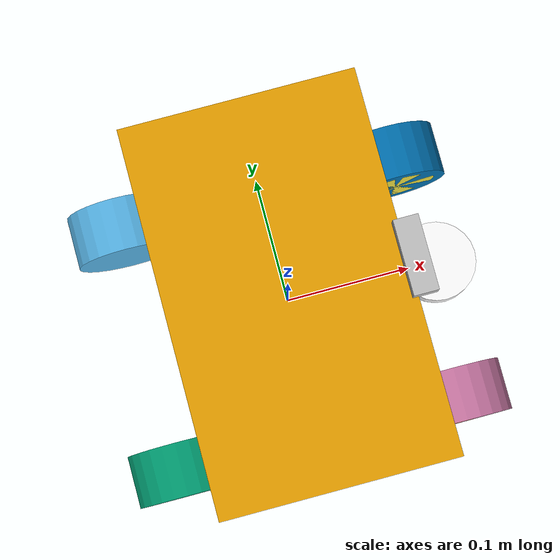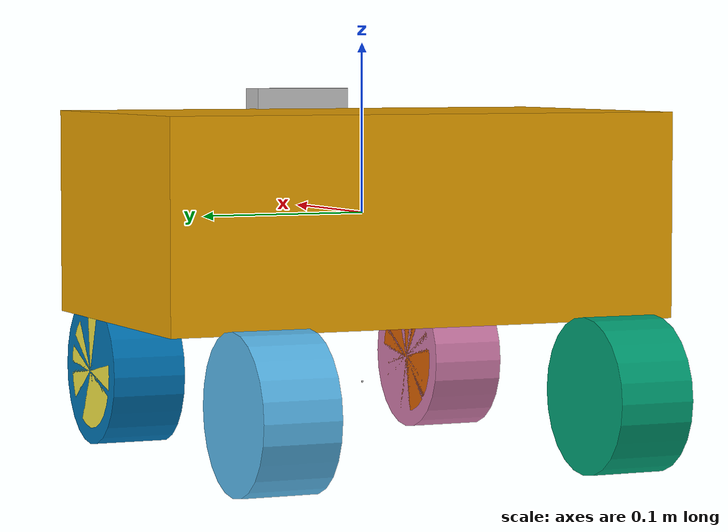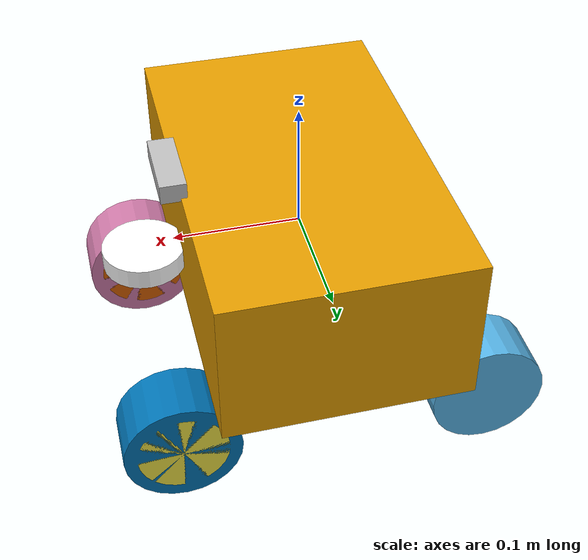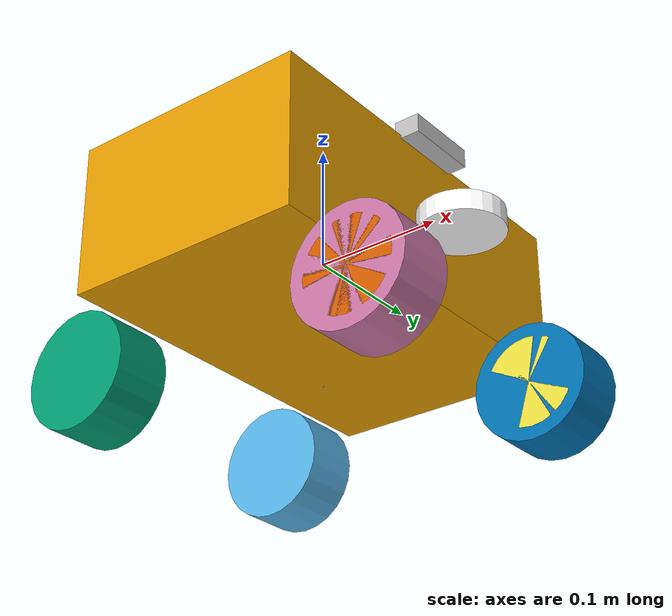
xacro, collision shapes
<?xml version="1.0"?>
<!--Auto: Zhui Li-->
<!--E-Mail: lz554113510@gmail.com -->
<!--Company: Institut für Intermodale Transport- und Logistiksysteme in Technische Universität Braunschweig -->

<robot name="limo_ackermann" xmlns:xacro="http://www.ros.org/wiki/xacro">

    <xacro:include filename="$(find limo_car)/gazebo/ackermann.xacro" />
    <xacro:limo_ackermann />
    <xacro:include filename="$(find limo_car)/gazebo/sensor.xacro" />

    <!-- ************************* Laser ****************************** -->
    <xacro:gazebo_laser frame_prefix="laser" />

    <joint name="laser_joint" type="fixed">
        <origin xyz="0.1236 0 -0.01" rpy="0 0 0"/>
        <parent link="base_link"/>
        <child link="laser_link"/>
    </joint>
    <!-- ************************* Depth-camera *********************** -->
    <xacro:gazebo_depth_camera frame_prefix="depth_camera" />

    <joint name="depth_camera_joint" type="fixed">
        <origin xyz="0.1 0 0.065" rpy="0 0 0"/>
        <parent link="base_link"/>
        <child link="depth_camera_link"/>
    </joint>
    <!-- ************************* IMU ******************************** -->
    <xacro:gazebo_imu frame_prefix="imu" />

    <joint name="imu_joint" type="fixed">
        <origin xyz="0.0 0 -0.1" rpy="0 0 0"/>
        <parent link="base_link"/>
        <child link="imu_link"/>
    </joint>
</robot>

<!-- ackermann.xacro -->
<!--Auto: Zhui Li-->
<!--E-Mail: lz554113510@gmail.com -->
<!--Company: Institut für Intermodale Transport- und Logistiksysteme in Technische Universität Braunschweig -->

<robot name="limo_ackermann" xmlns:xacro="http://www.ros.org/wiki/xacro">

    <!-- ******************************** Paramenten zu definieren ************************************* -->
    <!-- definiert Value -->
    <xacro:property name="M_PI" value="${pi}"/>

    <!-- das Value sind all gemessen -->
    <xacro:property name="base_mass" value="4.34"/>
    <xacro:property name="base_x_size" value="0.19" />
    <xacro:property name="base_y_size" value="0.31" />
    <xacro:property name="base_z_size" value="0.12" />

    <xacro:property name="wheelbase" value="0.24"/>
    <xacro:property name="track" value="0.168"/>
    <xacro:property name="wheel_vertical_offset" value="-0.10" />

    <xacro:property name="wheel_mass" value="0.5" />
    <xacro:property name="wheel_length" value="0.045" />
    <xacro:property name="wheel_radius" value="0.045" />

    <!-- Finite contact stiffness avoids hard-contact chatter at the world's 4 ms step. -->
    <xacro:macro name="wheel_contact" params="link">
        <gazebo reference="${link}">
            <mu1>0.8</mu1>
            <mu2>0.8</mu2>
            <kp>100000</kp>
            <kd>100</kd>
            <minDepth>0.001</minDepth>
            <maxVel>0.1</maxVel>
        </gazebo>
    </xacro:macro>

    <!-- definieren die Macro-Function für die Rechnungen der Matrizen für Trägheitsmoment-->
    <!-- Zylinder -->
    <xacro:macro name="cylinder_inertial_matrix" params="m r h">
        <inertial>
            <!-- Same center and cylinder axis as the wheel collision. -->
            <origin xyz="0 ${wheel_length/2} 0" rpy="${M_PI/2} 0 0" />
            <mass value="${m}" />
            <inertia ixx="${m*(3*r*r+h*h)/12}" ixy = "0" ixz = "0"
                     iyy="${m*(3*r*r+h*h)/12}" iyz = "0"
                     izz="${m*r*r/2}" />
        </inertial>
    </xacro:macro>
    <!-- Quader -->
    <xacro:macro name="box_inertial_matrix" params="m w l h">
        <inertial>
            <origin xyz="0.0 0.0 0.0" />
            <mass value="${m}" />
            <inertia ixx="${m*(l*l+h*h)/12}" ixy = "0" ixz = "0"
                     iyy="${m*(h*h+w*w)/12}" iyz = "0"
                     izz="${m*(w*w+l*l)/12}" />
        </inertial>
    </xacro:macro>

    <!-- **************************** Makrofunktion zu definieren ************************************** -->
    <!-- Makrofunktion für vorderen Räder mit Steuerscharnier-->
    <!-- front left -->
    <xacro:macro name="limo_left_steering_hinge" params="parent_prefix wheel_prefix *joint_pose">
        <link name="${wheel_prefix}_steer_link">
            <inertial>
                <!-- diese Daten kommen aus den Herstellern -->
                <mass value="0.25" />
                <inertia ixx="0.00525" ixy="0" ixz="0" iyy="0.00035" iyz="0" izz="0.00525" />
                <origin xyz="0 0 0" />
            </inertial>
            <visual>
                <origin xyz="0 0 0" rpy="0 0 0" />
                <geometry>
                    <!-- es ist sehr klein, einfach als Klein definiert wird -->
                    <cylinder length="0.0001" radius="0.0001" />
                </geometry>
            </visual>
            <collision>
                <origin xyz="0 ${wheel_length/2} 0" rpy="${M_PI/2} 0 0" />
                <geometry>
                    <cylinder length="${wheel_length}" radius="${wheel_radius-0.01}" />
                </geometry>
            </collision>
        </link>

        <joint name="${wheel_prefix}_steer_joint" type="revolute">
            <parent link="${parent_prefix}"/>
            <child link="${wheel_prefix}_steer_link"/>
            <xacro:insert_block name="joint_pose"/>
            <axis xyz="0 0 1" />
            <!-- Paramenten von Herstellern -->
            <limit lower="-0.523598767" upper="0.523598767" effort="5" velocity="2.0" />
            <dynamics damping="0.1" friction="0.0"/>
        </joint>

        <transmission name="${wheel_prefix}_hinge_trans" type="SimpleTransmission">
            <type>transmission_interface/SimpleTransmission</type>
            <actuator name="${wheel_prefix}_hinge_motor">
                <hardwareInterface>hardware_interface/EffortJointInterface</hardwareInterface>
                <mechanicalReduction>1</mechanicalReduction>
            </actuator>
            <joint name="${wheel_prefix}_steer_joint">
                <hardwareInterface>hardware_interface/EffortJointInterface</hardwareInterface>
            </joint>
        </transmission>

        <link name="${wheel_prefix}_wheel_link">
            <visual>
                <origin xyz="0 0 0" rpy="0 0 0" />
                <geometry>
                    <mesh filename="$(find limo_car)/meshes/limo_wheel.dae" scale="1.2 1.2 1.2"/>
                </geometry>
            </visual>
            <collision>
                <origin xyz="0 ${wheel_length/2} 0" rpy="${M_PI/2} 0 0" />
                <geometry>
                    <cylinder length="${wheel_length}" radius="${wheel_radius}" />
                </geometry>
            </collision>
            <xacro:cylinder_inertial_matrix  m="${wheel_mass}" r="${wheel_radius}"  h="${wheel_length}" />
        </link>

        <joint name="${wheel_prefix}_wheel_joint" type="continuous">
            <parent link="${wheel_prefix}_steer_link"/>
            <child link="${wheel_prefix}_wheel_link"/>
            <origin xyz="0 0 0" rpy="0 0 0" />
            <axis xyz="0 1 0"/>
        </joint>

        <transmission name="${wheel_prefix}_wheel_trans" type="SimpleTransmission">
            <type>transmission_interface/SimpleTransmission</type>
            <actuator name="${wheel_prefix}_wheel_motor">
                <!-- Type für den Topic(Paramenten) -->
                <hardwareInterface>hardware_interface/VelocityJointInterface</hardwareInterface>
                <mechanicalReduction>1</mechanicalReduction>
            </actuator>
            <joint name="${wheel_prefix}_wheel_joint">
                <hardwareInterface>hardware_interface/VelocityJointInterface</hardwareInterface>
            </joint>
        </transmission>
    </xacro:macro>

    <!-- front right -->
    <xacro:macro name="limo_right_steering_hinge" params="parent_prefix wheel_prefix *joint_pose">
        <link name="${wheel_prefix}_steer_link">
            <inertial>
                <mass value="0.25" />
                <inertia ixx="0.00525" ixy="0" ixz="0" iyy="0.00035" iyz="0" izz="0.00525" />
                <origin xyz="0 0 0" />
            </inertial>
            <visual>
                <origin xyz="0 0 0" rpy="0 0 0" />
                <geometry>
                    <cylinder length="0.0001" radius="0.0001" />
                </geometry>
            </visual>
            <collision>
                <origin xyz="0 ${wheel_length/2} 0" rpy="${M_PI/2} 0 0" />
                <geometry>
                    <cylinder length="${wheel_length}" radius="${wheel_radius-0.01}" />
                </geometry>
            </collision>
        </link>

        <joint name="${wheel_prefix}_steer_joint" type="revolute">
            <parent link="${parent_prefix}"/>
            <child link="${wheel_prefix}_steer_link"/>
            <xacro:insert_block name="joint_pose"/>
            <axis xyz="0 0 -1"/>
            <limit lower="-0.523598767" upper="0.523598767" effort="5" velocity="2.0" />
            <dynamics damping="0.1" friction="0.0"/>
        </joint>

        <transmission name="${wheel_prefix}_hinge_trans" type="SimpleTransmission">
            <type>transmission_interface/SimpleTransmission</type>
            <actuator name="${wheel_prefix}_hinge_motor">
                <hardwareInterface>hardware_interface/EffortJointInterface</hardwareInterface>
                <mechanicalReduction>1</mechanicalReduction>
            </actuator>
            <joint name="${wheel_prefix}_steer_joint">
                <hardwareInterface>hardware_interface/EffortJointInterface</hardwareInterface>
            </joint>
        </transmission>

        <link name="${wheel_prefix}_wheel_link">
            <visual>
                <origin xyz="0 0 0" rpy="0 0 0" />
                <geometry>
                    <mesh filename="$(find limo_car)/meshes/limo_wheel.dae" scale="1.2 1.2 1.2" />
                </geometry>
            </visual>
            <collision>
                <origin xyz="0 ${wheel_length/2} 0" rpy="${M_PI/2} 0 0" />
                <geometry>
                    <cylinder length="${wheel_length}" radius="${wheel_radius}" />
                </geometry>
            </collision>
            <xacro:cylinder_inertial_matrix  m="${wheel_mass}" r="${wheel_radius}"  h="${wheel_length}" />
        </link>

        <joint name="${wheel_prefix}_wheel_joint" type="continuous">
            <parent link="${wheel_prefix}_steer_link"/>
            <child link="${wheel_prefix}_wheel_link"/>
            <origin xyz="0 0 0" rpy="0 0  0" />
            <axis xyz="0 -1 0"/>
        </joint>

        <transmission name="${wheel_prefix}_wheel_trans" type="SimpleTransmission">
            <type>transmission_interface/SimpleTransmission</type>
            <actuator name="${wheel_prefix}_wheel_motor">
                <!-- Type für den Topic(Paramenten) -->
                <hardwareInterface>hardware_interface/VelocityJointInterface</hardwareInterface>
                <mechanicalReduction>1</mechanicalReduction>
            </actuator>
            <joint name="${wheel_prefix}_wheel_joint">
                <hardwareInterface>hardware_interface/VelocityJointInterface</hardwareInterface>
            </joint>
        </transmission>
    </xacro:macro>

    <!-- ***************************************** Base zu bauen *************************************** -->
    <!-- erstellt Hauptanteil des Modells, definiert ein Nullpunkt, um Modell aufzubauen. Es ist einfach für weitere
    Darstellungspostion in Simulation-Umgebung -->
    <xacro:macro name="limo_ackermann">

        <!-- herstellt base_link -->
        <link name="base_link">
            <visual>
                <origin xyz="0 0 -0.15" rpy="0 0 ${M_PI/2}" />
                <geometry>
                    <!-- Modell von Hersteller, aber es ist kleiner als realen Produkt, da die Skale vergrößert wird -->
                    <mesh filename="$(find limo_car)/meshes/limo_base.dae" scale="1.2 1.2 1.2" />
                </geometry>
            </visual>
            <!-- Modell für physikalische Kollision zu modellieren. -->
            <collision>
                <origin xyz="0 0 0" rpy="0 0 0" />
                <geometry>
                    <box size="${base_x_size} ${base_y_size} ${base_z_size}"/>
                </geometry>
            </collision>
            <xacro:box_inertial_matrix  m="${base_mass}" w="${base_x_size}" l="${base_y_size}" h="${base_z_size}" />
        </link>

        <gazebo reference="base_link">
            <material>
                <color rgba="0 0 0 0.5"/>
            </material>
        </gazebo>

        <!-- hinten Räder -->
        <link name="rear_left_wheel_link">
            <visual>
                <origin xyz="0 0 0" rpy="0 0 0" />
                <geometry>
                    <mesh filename="$(find limo_car)/meshes/limo_wheel.dae" scale="1.2 1.2 1.2"/>
                </geometry>
            </visual>
            <collision>
                <origin xyz="0 ${wheel_length/2} 0" rpy="${M_PI/2} 0 0" />
                <geometry>
                    <cylinder length="${wheel_length}" radius="${wheel_radius}" />
                </geometry>
            </collision>
            <xacro:cylinder_inertial_matrix  m="${wheel_mass}" r="${wheel_radius}" h="${wheel_length}"/>
        </link>

        <joint name="rear_left_wheel_joint" type="continuous">
            <parent link="base_link"/>
            <child link="rear_left_wheel_link"/>
            <origin xyz="${-wheelbase/2} ${track/2} ${wheel_vertical_offset}" rpy="0 0 0" />
            <axis xyz="0 1 0"/>
        </joint>

        <transmission name="rear_left_wheel_trans" type="SimpleTransmission">
            <type>transmission_interface/SimpleTransmission</type>
            <actuator name="rear_left_wheel_motor">
                <hardwareInterface>hardware_interface/VelocityJointInterface</hardwareInterface>
                <mechanicalReduction>1</mechanicalReduction>
            </actuator>
            <joint name="rear_left_wheel_joint">
                <hardwareInterface>hardware_interface/VelocityJointInterface</hardwareInterface>
            </joint>
        </transmission>

        <link name="rear_right_wheel_link">
            <visual>
                <origin xyz="0 0 0" rpy="0 0 0" />
                <geometry>
                    <mesh filename="$(find limo_car)/meshes/limo_wheel.dae" scale="1.2 1.2 1.2"/>
                </geometry>
            </visual>
            <collision>
                <origin xyz="0 ${wheel_length/2} 0" rpy="${M_PI/2} 0 0" />
                <geometry>
                    <cylinder length="${wheel_length}" radius="${wheel_radius}" />
                </geometry>
            </collision>
            <xacro:cylinder_inertial_matrix  m="${wheel_mass}" r="${wheel_radius}" h="${wheel_length}"/>
        </link>

        <joint name="rear_right_wheel_joint" type="continuous">
            <parent link="base_link"/>
            <child link="rear_right_wheel_link"/>
            <origin xyz="${-wheelbase/2} ${-track/2} ${wheel_vertical_offset}" rpy="${M_PI} 0 0" />
            <axis xyz="0 -1 0"/>
        </joint>

        <transmission name="rear_right_wheel_trans" type="SimpleTransmission">
            <type>transmission_interface/SimpleTransmission</type>
            <actuator name="rear_right_wheel_motor">
                <hardwareInterface>hardware_interface/VelocityJointInterface</hardwareInterface>
                <mechanicalReduction>1</mechanicalReduction>
            </actuator>
            <joint name="rear_right_wheel_joint">
                <hardwareInterface>hardware_interface/VelocityJointInterface</hardwareInterface>
            </joint>
        </transmission>

        <!-- ruft Steuerscharnier mit vorderem Räder auf -->
        <xacro:limo_left_steering_hinge parent_prefix="base_link" wheel_prefix="front_left">
            <origin xyz="${wheelbase/2} ${track/2} ${wheel_vertical_offset}" rpy="0 0 0" />
        </xacro:limo_left_steering_hinge>

        <xacro:limo_right_steering_hinge parent_prefix="base_link" wheel_prefix="front_right">
            <origin xyz="${wheelbase/2} ${-track/2} ${wheel_vertical_offset}" rpy="${M_PI} 0 0" />
        </xacro:limo_right_steering_hinge>

        <!-- ********************************** Kontrolle zu erstellen ************************************* -->
        <xacro:wheel_contact link="front_left_wheel_link"/>
        <xacro:wheel_contact link="front_right_wheel_link"/>
        <xacro:wheel_contact link="rear_left_wheel_link"/>
        <xacro:wheel_contact link="rear_right_wheel_link"/>
        <gazebo>
            <!-- Rear wheel torque and front steering control; never overwrite body velocity. -->
            <plugin name="limo_ackermann_controller" filename="libgazebo_ros_ackermann_drive.so">
                <ros>
                    <remapping>cmd_vel:=/ackermann_controller/cmd_vel</remapping>
                    <remapping>odom:=/odom</remapping>
                </ros>
                <update_rate>250.0</update_rate>
                <front_left_joint>front_left_wheel_joint</front_left_joint>
                <front_right_joint>front_right_wheel_joint</front_right_joint>
                <rear_left_joint>rear_left_wheel_joint</rear_left_joint>
                <rear_right_joint>rear_right_wheel_joint</rear_right_joint>
                <left_steering_joint>front_left_steer_joint</left_steering_joint>
                <right_steering_joint>front_right_steer_joint</right_steering_joint>
                <left_steering_pid_gain>20 0 0.5</left_steering_pid_gain>
                <right_steering_pid_gain>20 0 0.5</right_steering_pid_gain>
                <left_steering_i_range>0 0</left_steering_i_range>
                <right_steering_i_range>0 0</right_steering_i_range>
                <linear_velocity_pid_gain>0.1 0.5 0</linear_velocity_pid_gain>
                <linear_velocity_i_range>-1 1</linear_velocity_i_range>
                <!-- Center angle leaves room for the inner wheel's 30 degree limit. -->
                <max_steer>0.42</max_steer>
                <max_speed>1.0</max_speed>
                <publish_odom>true</publish_odom>
                <publish_odom_tf>true</publish_odom_tf>
                <publish_wheel_tf>false</publish_wheel_tf>
                <odometry_frame>odom</odometry_frame>
                <robot_base_frame>base_link</robot_base_frame>
            </plugin>
            <plugin name="limo_ackermann_joint_states" filename="libgazebo_ros_joint_state_publisher.so">
                <ros><remapping>joint_states:=/joint_states</remapping></ros>
                <update_rate>100</update_rate>
                <joint_name>front_left_steer_joint</joint_name>
                <joint_name>front_right_steer_joint</joint_name>
                <joint_name>front_left_wheel_joint</joint_name>
                <joint_name>front_right_wheel_joint</joint_name>
                <joint_name>rear_left_wheel_joint</joint_name>
                <joint_name>rear_right_wheel_joint</joint_name>
            </plugin>
        </gazebo>
    </xacro:macro>
</robot>

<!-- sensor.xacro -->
<!-- Autor: Zhui Li -->
<!--E-Mail: lz554113510@gmail.com -->
<!--Company: Institut für Intermodale Transport- und Logistiksysteme in Technische Universität Braunschweig -->

<robot name="limo_sensor" xmlns:xacro="http://www.ros.org/wiki/xacro">

    <!-- ******************************* Makrofunktion für Laser-Sensor ***************************** -->
    <xacro:macro name="gazebo_laser" params="frame_prefix">
        <link name='${frame_prefix}_link'>
            <inertial>
                <mass value="0.1"/>
                <origin xyz="0.0 0 0" rpy="0 0 0"/>
                <inertia
                        ixx="1e-6" ixy="0" ixz="0"
                        iyy="1e-6" iyz="0"
                        izz="1e-6"
                />
            </inertial>
            <visual name='laser_visual'>
                <origin xyz="0 0 0" rpy="0 0 0"/>
                <geometry>
                    <cylinder radius="0.02" length="0.01"/>
                </geometry>
                <material name='laser_material'>
                    <color rgba="1 1 1 1" />
                    <ambient>0.1 0.1 0.1 1</ambient>
                    <diffuse>0.1 0.1 0.2 1</diffuse>
                    <specular>0 0 0 0</specular>
                    <emissive>0 0 0 1</emissive>
                </material>
            </visual>
            <collision name='laser_collision'>
                <origin xyz="0 0 0" rpy="0 0 0"/>
                <geometry>
                    <cylinder radius="0.032" length="0.016"/>
                </geometry>
            </collision>
        </link>

        <gazebo reference="${frame_prefix}_link">
            <sensor type="ray" name="laser_sensor">
                <visualize>false</visualize>
                <update_rate>8</update_rate>
                <ray>
                    <scan>
                        <horizontal>
                            <samples>720</samples>
                            <resolution>1</resolution>
                            <min_angle>-2.09439504</min_angle> <!-- Einheit in "rad", von Hersteller -->
                            <max_angle>2.09439504</max_angle>
                        </horizontal>
                    </scan>
                    <range>
                        <min>0.2</min>
                        <max>8.0</max>
                        <resolution>0.01</resolution>
                    </range>
                    <!-- um bessere Realität zu simulieren, wird Rauschen auch addiert -->
                    <noise>
                        <type>gaussian</type>
                        <mean>0.0</mean>
                        <stddev>0.01</stddev>
                    </noise>
                </ray>
                <plugin name="gazebo_ros_laser_sensor" filename="libgazebo_ros_ray_sensor.so">
                    <ros>
                        <namespace>/</namespace>
                        <remapping>~/out:=scan</remapping>
                    </ros>
                    <!-- Fixed-joint reduction otherwise labels scans as base_link. -->
                    <frame_name>${frame_prefix}_link</frame_name>
                    <output_type>sensor_msgs/LaserScan</output_type>
                    <min_intensity>150.0</min_intensity>
                </plugin>
            </sensor>
        </gazebo>
    </xacro:macro>

    <!-- ******************************* Makrofunktion für Depth-Camera ***************************** -->
    <xacro:macro name="gazebo_depth_camera" params="frame_prefix">
        <link name='${frame_prefix}_link'>
            <origin xyz="0 0 0" rpy="0 0 0"/>
            <inertial>
                <mass value="0.1"/>
                <origin xyz="0.0 0 0" rpy="0 0 0"/>
                <inertia
                        ixx="1e-6" ixy="0" ixz="0"
                        iyy="1e-6" iyz="0"
                        izz="1e-6"
                />
            </inertial>
            <visual name='depth_camera_visual'>
                <origin xyz="0 0 0" rpy="0 0 0"/>
                <geometry>
                    <box size="0.02 0.06 0.015"/>
                </geometry>
                <material name='depth_camera_material'>
                    <color rgba="0.75 0.75 0.75 1" />
                    <ambient>0.1 0.1 0.1 1</ambient>
                    <diffuse>0.1 0.1 0.2 1</diffuse>
                    <specular>0 0 0 0</specular>
                    <emissive>0 0 0 1</emissive>
                </material>
            </visual>
            <collision name='depth_camera_collision'>
                <origin xyz="0 0 0" rpy="0 0 0"/>
                <geometry>
                    <box size="0.02 0.06 0.015"/>
                </geometry>
            </collision>
        </link>

        <link name="depth_link" />

        <joint name="${frame_prefix}_to_camera_joint" type="fixed">
            <origin xyz="0 0 0" rpy="-1.570796 0 -1.570796 "/>
            <parent link="${frame_prefix}_link"/>
            <child link="depth_link"/>
        </joint>

        <gazebo reference="${frame_prefix}_link">
            <sensor name="sensor_camera" type="depth">
                <pose>0.0 0.0 0.0 0.0 0.0 0.0</pose>
                <always_on>true</always_on>
                <visualize>true</visualize>
                <update_rate>10.0</update_rate>
                <camera name="head">
                    <horizontal_fov>1.3962634</horizontal_fov> <!-- 60*pi/180 -->
                    <!-- normalisieren die Form für Fotos -->
                    <image>
                        <width>640</width>
                        <height>480</height>
                        <format>R8G8B8</format>
                    </image>
                    <clip>
                        <near>0.15</near>
                        <far>8.0</far>
                    </clip>
                </camera>
                <plugin name="gazebo_ros_depth_camera_sensor" filename="libgazebo_ros_camera.so">
                    <ros>
                        <remapping>${frame_prefix}/image_raw:=rgb/image_raw</remapping>
                        <remapping>${frame_prefix}/image_depth:=depth/image_raw</remapping>
                        <remapping>${frame_prefix}/camera_info:=rgb/camera_info</remapping>
                        <remapping>${frame_prefix}/camera_info_depth:=depth/camera_info</remapping>
                        <remapping>${frame_prefix}/points:=depth/points</remapping>
                    </ros>
                    <camera_name>${frame_prefix}</camera_name>
                    <frame_name>depth_link</frame_name>
                    <hack_baseline>0.07</hack_baseline>
                    <min_depth>0.001</min_depth>
                    <max_depth>300.0</max_depth>
                </plugin>
            </sensor>
        </gazebo>
    </xacro:macro>

    <!-- ******************************* Makrofunktion für IMU ***************************** -->
    <xacro:macro name="gazebo_imu" params="frame_prefix">
        <link name='${frame_prefix}_link'>
            <pose>0 0 0 0 0 0</pose>
            <inertial>
                <mass value="0.01"/>
                <origin xyz="0.0 0 0" rpy="0 0 0"/>
                <inertia
                        ixx="1e-7" ixy="0" ixz="0"
                        iyy="1e-7" iyz="0"
                        izz="1e-7"
                />
            </inertial>
            <visual name='imu_visual'>
                <origin xyz="0 0 0" rpy="0 0 0"/>
                <geometry>
                    <box size="0.001 0.001 0.001"/>
                </geometry>
                <material name='imu_material'>
                    <color rgba="0.75 0.75 0.75 1" />
                    <ambient>0.1 0.1 0.1 1</ambient>
                    <diffuse>0.1 0.1 0.2 1</diffuse>
                    <specular>0 0 0 0</specular>
                    <emissive>0 0 0 1</emissive>
                </material>
            </visual>
            <collision name='imu_collision'>
                <origin xyz="0 0 0" rpy="0 0 0"/>
                <geometry>
                    <box size="0.001 0.001 0.001"/>
                </geometry>
            </collision>
        </link>

        <gazebo reference="${frame_prefix}_link">
            <gravity>true</gravity>
            <sensor name="imu_sensor" type="imu">
                <always_on>true</always_on>
                <update_rate>100</update_rate>
                <visualize>true</visualize>
                <topic>__default_topic__</topic>
                <pose>0 0 0 0 0 0</pose>

                <plugin filename="libgazebo_ros_imu_sensor.so" name="imu_plugin">
                    <ros>
                        <remapping>~/out:=/imu_plugin/out</remapping>
                    </ros>
                    <frame_name>${frame_prefix}_link</frame_name>
                    <initial_orientation_as_reference>false</initial_orientation_as_reference>
                </plugin>
            </sensor>
        </gazebo>
    </xacro:macro>
</robot>
